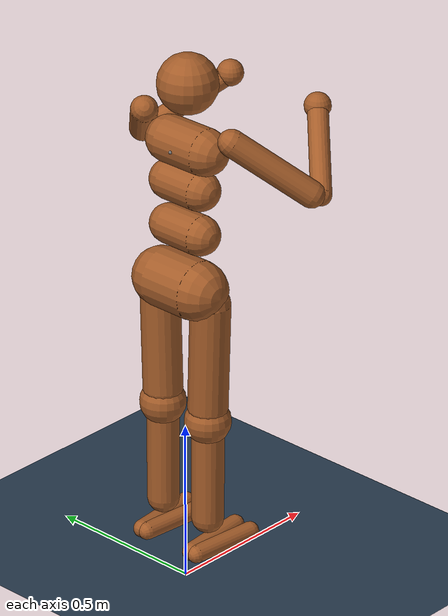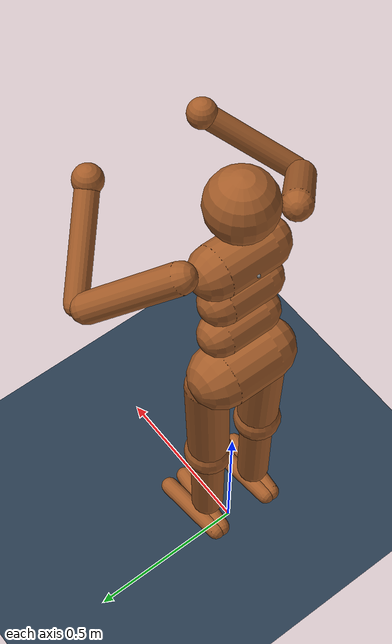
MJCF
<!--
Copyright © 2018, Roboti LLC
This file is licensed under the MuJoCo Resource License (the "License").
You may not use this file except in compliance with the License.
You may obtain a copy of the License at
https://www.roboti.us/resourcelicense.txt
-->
<mujoco model="Humanoid">

    <compiler inertiafromgeom="true" angle="degree" settotalmass="75"/>

    <default>
        <joint limited="true" damping="1" armature="0"/>
        <geom condim="1" material="matgeom"/>
        <general ctrlrange="-1 1" ctrllimited="true" dynprm="0.0333" dyntype="filter"/>
    </default>

    <option timestep="0.005" iterations="50" tolerance="1e-10" solver="Newton" jacobian="dense" cone="pyramidal"/>

    <size nconmax="50" njmax="200" nstack="10000"/>

    <visual>
        <map force="0.1" zfar="30"/>
        <rgba haze="0.15 0.25 0.35 1"/>
        <quality shadowsize="2048"/>
        <global offwidth="800" offheight="800"/>
    </visual>

    <asset>
        <texture type="skybox" builtin="gradient" rgb1="0.3 0.5 0.7" rgb2="0 0 0" width="512" height="512"/>

        <texture name="texplane" type="2d" builtin="checker" rgb1=".2 .3 .4" rgb2=".1 0.15 0.2" width="512" height="512" mark="cross" markrgb=".8 .8 .8"/>

        <texture name="texgeom" type="cube" builtin="flat" mark="cross" width="127" height="1278"
            rgb1="0.8 0.6 0.4" rgb2="0.8 0.6 0.4" markrgb="1 1 1" random="0.01"/>

        <material name="matplane" reflectance="0.3" texture="texplane" texrepeat="1 1" texuniform="true"/>

        <material name="matgeom" texture="texgeom" texuniform="true" rgba="0.8 0.6 .4 1"/>
    </asset>

    <worldbody>
        <geom name="floor" pos="0 0 0" size="0 0 .25" type="plane" material="matplane" condim="3"/>

        <light directional="false" diffuse=".2 .2 .2" specular="0 0 0" pos="0 0 5" dir="0 0 -1" castshadow="false"/>
        <light mode="targetbodycom" target="torso" directional="false" diffuse=".8 .8 .8" specular="0.3 0.3 0.3" pos="0 0 4.0" dir="0 0 -1"/>

        <body name="pelvis" pos="0 0 0.975"  >
            <freejoint name="root"/>
            <geom name="butt" type="capsule" fromto="-.02 -.07 0 -.02 .07 0"  size="0.09" />
            <site name="pelvis" pos="-0.09 0 0"/>
            <body name="right_thigh" pos="0 -0.1 -0.04" >
                <joint name="right_hip_x" type="hinge" pos="0 0 0" axis="1 0 0" range="-25 5"   damping="5" stiffness="10" armature="0.01" />
                <joint name="right_hip_z" type="hinge" pos="0 0 0" axis="0 0 1" range="-60 35"  damping="5" stiffness="10" armature="0.01" />
                <joint name="right_hip_y" type="hinge" pos="0 0 0" axis="0 1 0" range="-120 20" damping="5" stiffness="20" armature="0.01" />
                <geom name="right_thigh1" type="capsule" fromto="0 0 0 0 0.01 -.34"  size="0.06" />
                <body name="right_shin" pos="0 0.01 -0.403" >
                    <joint name="right_knee" type="hinge" pos="0 0 .02" axis="0 -1 0" range="-160 -2" stiffness="1" armature="0.0060" />
                    <geom name="right_knee1" type="sphere" pos="0 0 .02" size="0.07" />
                    <geom name="right_shin1" type="capsule" fromto="0 0 0 0 0 -.3"   size="0.049" />
                    <site name="right_shin" pos="0.049 0 -0.15"/>
                    <body name="right_foot" pos="0 0 -.39" >
                        <joint name="right_ankle_y" type="hinge" pos="0 0 0.08" axis="0 1 0"   range="-50 50" stiffness="4" armature="0.0008" />
                        <joint name="right_ankle_x" type="hinge" pos="0 0 0.04" axis="1 0 0.5" range="-50 50" stiffness="1"  armature="0.0006" />
                        <geom name="right_foot_cap1" type="capsule" fromto="-.07 -0.02 0 0.14 -0.04 0"  size="0.027" />
                        <geom name="right_foot_cap2" type="capsule" fromto="-.07 0 0 0.14  0.02 0"  size="0.027" />
                    </body>
                </body>
            </body>
            <body name="left_thigh" pos="0 0.1 -0.04" >
                <joint name="left_hip_x" type="hinge" pos="0 0 0" axis="-1 0 0" range="-25 5"  damping="5" stiffness="10" armature="0.01" />
                <joint name="left_hip_z" type="hinge" pos="0 0 0" axis="0 0 -1" range="-60 35" damping="5" stiffness="10" armature="0.01" />
                <joint name="left_hip_y" type="hinge" pos="0 0 0" axis="0 1 0" range="-120 20" damping="5" stiffness="20" armature="0.01" />
                <geom name="left_thigh1" type="capsule" fromto="0 0 0 0 -0.01 -.34"  size="0.06" />
                <body name="left_shin" pos="0 -0.01 -0.403" >
                    <joint name="left_knee" type="hinge" pos="0 0 .02" axis="0 -1 0" range="-160 -2" stiffness="1" armature="0.0060" />
                    <geom name="left_knee1" type="sphere" pos="0 0 .02" size="0.07" />
                    <geom name="left_shin1" type="capsule" fromto="0 0 0 0 0 -.3"   size="0.049" />
                    <site name="left_shin" pos="0.049 0 -0.15"/>
                    <body name="left_foot" pos="0 0 -.39" >
                        <joint name="left_ankle_y" type="hinge" pos="0 0 0.08" axis="0 1 0"   range="-50 50"  stiffness="4" armature="0.0008" />
                        <joint name="left_ankle_x" type="hinge" pos="0 0 0.04" axis="1 0 0.5" range="-50 50"  stiffness="1"  armature="0.0006" />
                        <geom name="left_foot_cap1" type="capsule" fromto="-.07 0.02 0 0.14 0.04 0"  size="0.027" />
                        <geom name="left_foot_cap2" type="capsule" fromto="-.07 0 0 0.14  -0.02 0"  size="0.027" />
                    </body>
                </body>
            </body>
            <body name="lwaist" pos="0 0 0.165" quat="1.000 0 0.002 0" >
                <geom name="lwaist" type="capsule" fromto="0 -.06 0 0 .06 0"  size="0.06" />
                <joint name="abdomen_x" type="hinge" pos="0 0 -0.065" axis="1 0 0" range="-35 35" damping="2.5" stiffness="75" armature="0.02" />
                <body name="torso" pos="0.01 0 0.26" quat="1.000 0 0.002 0">
                    <joint name="abdomen_z" type="hinge" pos="0 0 -0.195" axis="0 0 1" range="-45 45" damping="2.5" stiffness="75" armature="0.02" />
                    <joint name="abdomen_y" type="hinge" pos="0 0 -0.195" axis="0 1 0" range="-30 75" damping="2.5" stiffness="75" armature="0.02" />
                    <geom name="torso1" type="capsule" fromto="0 -.07 0 0 .07 0"  size="0.07" />
                    <site name="torso" pos="-0.07 0 0"/>
                    <geom name="head" type="sphere" pos="0 0 .19" size=".09" />
                    <geom name="uwaist" type="capsule" fromto="-.01 -.06 -.12 -.01 .06 -.12" size="0.06" />
                    <body name="right_upper_arm" pos="0 -0.17 0.06" >
                        <joint name="right_shoulder1" type="hinge" pos="0 0 0" axis="2 1 1"  range="-85 60" damping="2.5" stiffness="75" armature="0.0068" />
                        <joint name="right_shoulder2" type="hinge" pos="0 0 0" axis="0 -1 1" range="-85 60" damping="2.5" stiffness="75"  armature="0.0051" />
                        <geom name="right_uarm1" type="capsule" fromto="0 0 0 .16 -.16 -.16"  size="0.04 0.16" />
                        <body name="right_lower_arm" pos=".18 -.18 -.18" >
                            <joint name="right_elbow" type="hinge" pos="0 0 0" axis="0 -1 1" range="-90 50" damping="2.5" stiffness="75" armature="0.0028" />
                            <geom name="right_larm" type="capsule" fromto="0.01 0.01 0.01 .17 .17 .17"  size="0.031" />
                            <site name="right_larm" pos=" .15 .15 .15"/>
                            <geom name="right_hand" type="sphere" pos=".18 .18 .18"  size="0.04"/>
                        </body>
                    </body>
                    <body name="left_upper_arm" pos="0 0.17 0.06" >
                        <joint name="left_shoulder1" type="hinge" pos="0 0 0" axis="2 -1 1" range="-60 85" damping="2.5" stiffness="75" armature="0.0068" />
                        <joint name="left_shoulder2" type="hinge" pos="0 0 0" axis="0 1 1" range="-60 85" damping="2.5" stiffness="75" armature="0.0051" />
                        <geom name="left_uarm1" type="capsule" fromto="0 0 0 .16 .16 -.16"  size="0.04 0.16" />
                        <body name="left_lower_arm" pos=".18 .18 -.18" >
                            <joint name="left_elbow" type="hinge" pos="0 0 0" axis="0 -1 -1" range="-90 50" damping="2.5" stiffness="75" armature="0.0028" />
                            <geom name="left_larm" type="capsule" fromto="0.01 -0.01 0.01 .17 -.17 .17"  size="0.031" />
                            <site name="left_larm" pos=" .15 -.15 .15"/>
                            <geom name="left_hand" type="sphere" pos=".18 -.18 .18"  size="0.04"/>
                        </body>
                    </body>
                    <body name="head" pos="0 0 0.19" />
                </body>
            </body>
        </body>
    </worldbody>

    <actuator>
        <general name="right_hip_x"     gear="100" joint="right_hip_x"/>
        <general name="right_hip_y"     gear="70" joint="right_hip_y" />
        <general name="right_knee"      gear="70" joint="right_knee" />
        <general name="right_ankle_y"   gear="100" joint="right_ankle_y" />
        <general name="left_hip_x"      gear="100" joint="left_hip_x" />
        <general name="left_hip_y"      gear="70" joint="left_hip_y" />
        <general name="left_knee"       gear="70" joint="left_knee" />
        <general name="left_ankle_y"    gear="100" joint="left_ankle_y" />

    </actuator>

    <sensor>
        <accelerometer site="pelvis" name="pelvisacc"/>
        <gyro site="pelvis" name="pelvisgyro"/>
        <velocimeter site="pelvis" name="pelvisvel"/>

        <accelerometer site="torso" name="torsoacc"/>
        <gyro site="torso" name="torsogyro"/>
        <velocimeter site="torso" name="torsovel"/>

        <accelerometer site="right_shin" name="right_shinacc"/>
        <gyro site="right_shin" name="right_shingyro"/>
        <velocimeter site="right_shin" name="right_shinvel"/>

        <accelerometer site="left_shin" name="left_shinacc"/>
        <gyro site="left_shin" name="left_shingyro"/>
        <velocimeter site="left_shin" name="left_shinvel"/>

        <accelerometer site="right_larm" name="right_larmacc"/>
        <gyro site="right_larm" name="right_larmgyro"/>
        <velocimeter site="right_larm" name="right_larmvel"/>

        <accelerometer site="left_larm" name="left_larmacc"/>
        <gyro site="left_larm" name="left_larmgyro"/>
        <velocimeter site="left_larm" name="left_larmvel"/>
    </sensor>

</mujoco>
